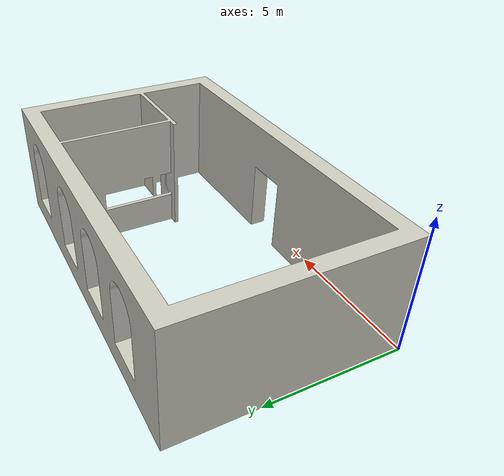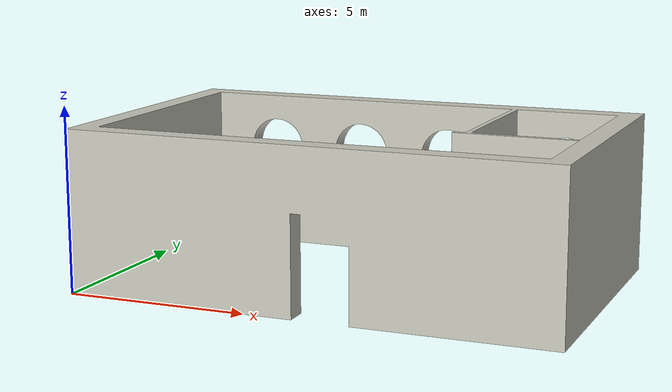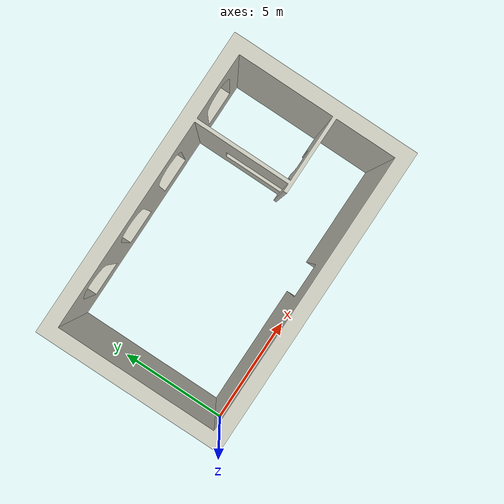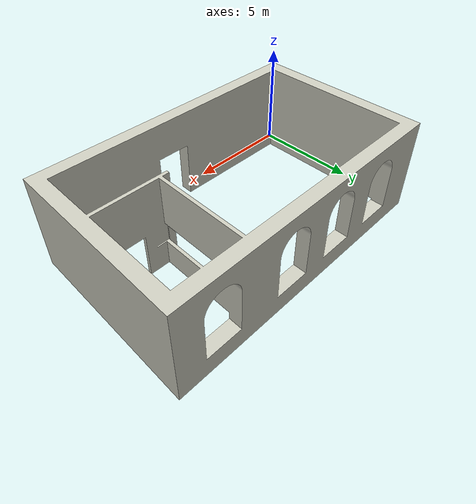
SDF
<?xml version='1.0'?>
<sdf version='1.7'>
  <model name='Walls'>
    <static>true</static>
    <link name='link_0'>

      <visual name='visual'>
        <geometry>
          <mesh>
            <uri>model://leoc6_walls/meshes/137493_00-M-LEO_Walls.stl</uri>
            <scale>0.001 0.001 0.001</scale>
          </mesh>
        </geometry>
        <material>
          <script>
            <name>Gazebo/PaintedWall</name>
            <uri>file://media/materials/scripts/gazebo.material</uri>
          </script>
        </material>
      </visual>

      <collision name='collision'>
        <geometry>
          <mesh>
            <uri>model://leoc6_walls/meshes/137493_00-M-LEO_Walls.stl</uri>
            <scale>0.001 0.001 0.001</scale>
          </mesh>
        </geometry>
      </collision>

    </link>

  </model>
</sdf>
